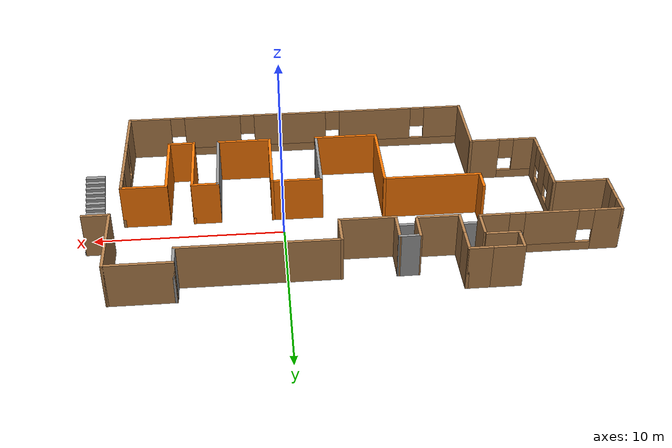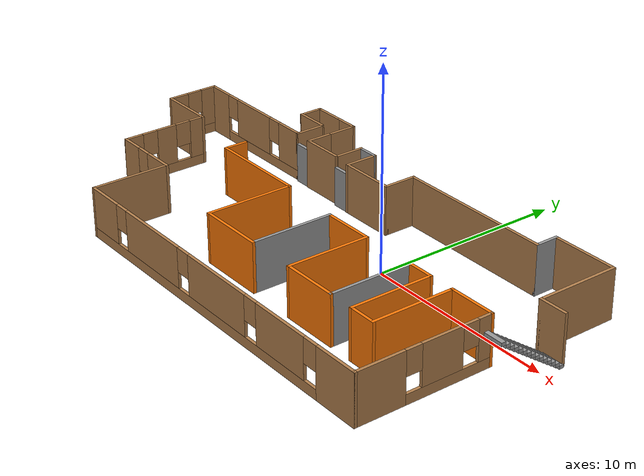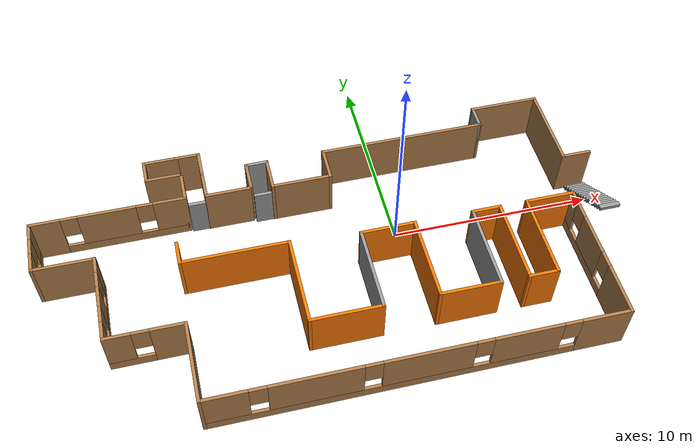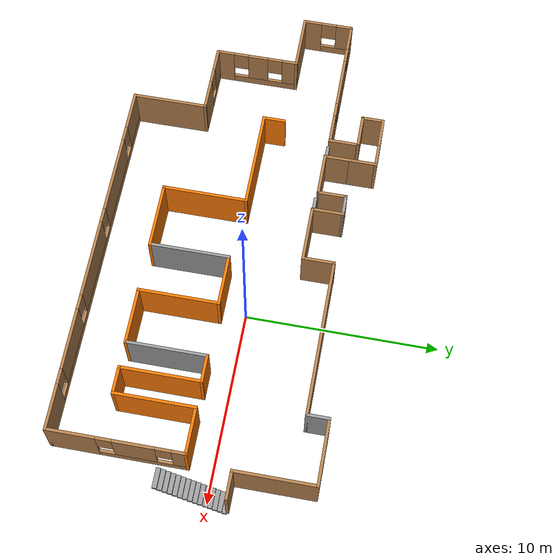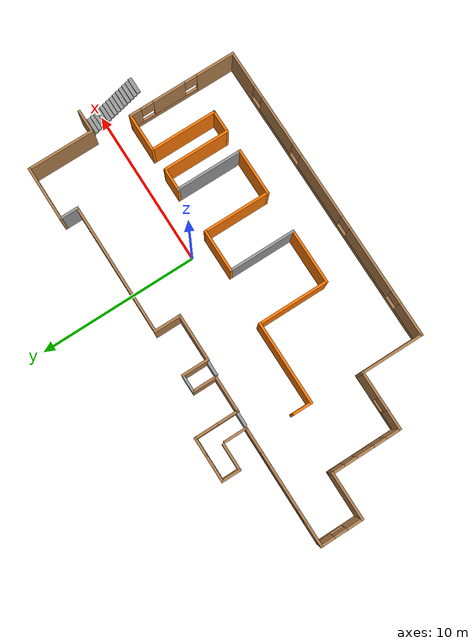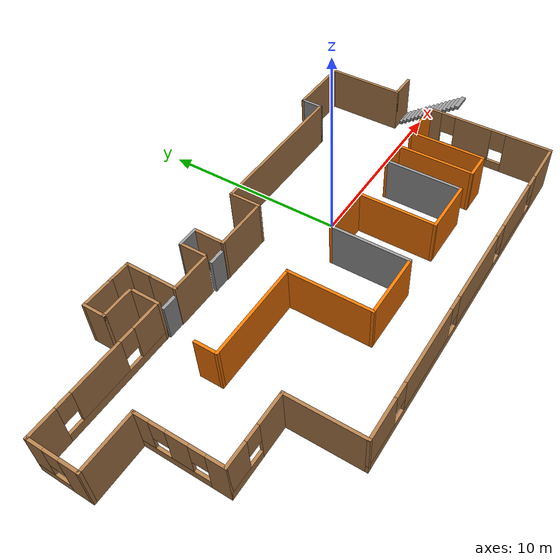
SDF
<sdf version="1.6">
 <model name="boomLab">
  <pose>-3.45682 -1.38478 0 0 -0 0</pose>
  <link name="Door_1">
   <collision name="Door_1_Collision">
    <geometry><box><size>0.9 0.17 2</size></box></geometry>
    <pose>0 0 1 0 -0 0</pose>
   </collision>
   <visual name="Door_1_Visual">
    <pose>0 0 1 0 -0 0</pose>
    <geometry><box><size>0.9 0.17 2</size></box></geometry>
    <material>
     <script><uri>file://media/materials/scripts/gazebo.material</uri><name>Gazebo/Grey</name></script>
    </material>
   </visual>
   <pose>-5.77779 4.03566 0 0 -0 0</pose>
  </link>
  <link name="Door_2">
   <collision name="Door_2_Collision">
    <geometry><box><size>0.9 0.17 2</size></box></geometry>
    <pose>0 0 1 0 -0 0</pose>
   </collision>
   <visual name="Door_2_Visual">
    <pose>0 0 1 0 -0 0</pose>
    <geometry><box><size>0.9 0.17 2</size></box></geometry>
    <material>
     <script><uri>file://media/materials/scripts/gazebo.material</uri><name>Gazebo/Grey</name></script>
    </material>
   </visual>
   <pose>-2.59373 3.89414 0 0 -0 0</pose>
  </link>
  <link name="Stairs_0">
   <visual name="Stairs_0_Visual_0">
    <pose>13.2551 2.30884 0.083333 0 -0 0</pose>
    <geometry><box><size>1 0.233333 0.166667</size></box></geometry>
    <material>
     <script><uri>file://media/materials/scripts/gazebo.material</uri><name>Gazebo/Grey</name></script>
     <ambient>1 1 1 1</ambient>
    </material>
    <meta><layer>0</layer></meta>
   </visual>
   <collision name="Stairs_0_Collision_0">
    <geometry><box><size>1 0.233333 0.166667</size></box></geometry>
    <pose>13.2551 2.30884 0.083333 0 -0 0</pose>
   </collision>
   <visual name="Stairs_0_Visual_1">
    <pose>13.2551 2.0755 0.25 0 -0 0</pose>
    <geometry><box><size>1 0.233333 0.166667</size></box></geometry>
    <material>
     <script><uri>file://media/materials/scripts/gazebo.material</uri><name>Gazebo/Grey</name></script>
     <ambient>1 1 1 1</ambient>
    </material>
    <meta><layer>0</layer></meta>
   </visual>
   <collision name="Stairs_0_Collision_1">
    <geometry><box><size>1 0.233333 0.166667</size></box></geometry>
    <pose>13.2551 2.0755 0.25 0 -0 0</pose>
   </collision>
   <visual name="Stairs_0_Visual_2">
    <pose>13.2551 1.84217 0.416667 0 -0 0</pose>
    <geometry><box><size>1 0.233333 0.166667</size></box></geometry>
    <material>
     <script><uri>file://media/materials/scripts/gazebo.material</uri><name>Gazebo/Grey</name></script>
     <ambient>1 1 1 1</ambient>
    </material>
    <meta><layer>0</layer></meta>
   </visual>
   <collision name="Stairs_0_Collision_2">
    <geometry><box><size>1 0.233333 0.166667</size></box></geometry>
    <pose>13.2551 1.84217 0.416667 0 -0 0</pose>
   </collision>
   <visual name="Stairs_0_Visual_3">
    <pose>13.2551 1.60884 0.583333 0 -0 0</pose>
    <geometry><box><size>1 0.233333 0.166667</size></box></geometry>
    <material>
     <script><uri>file://media/materials/scripts/gazebo.material</uri><name>Gazebo/Grey</name></script>
     <ambient>1 1 1 1</ambient>
    </material>
    <meta><layer>0</layer></meta>
   </visual>
   <collision name="Stairs_0_Collision_3">
    <geometry><box><size>1 0.233333 0.166667</size></box></geometry>
    <pose>13.2551 1.60884 0.583333 0 -0 0</pose>
   </collision>
   <visual name="Stairs_0_Visual_4">
    <pose>13.2551 1.3755 0.75 0 -0 0</pose>
    <geometry><box><size>1 0.233333 0.166667</size></box></geometry>
    <material>
     <script><uri>file://media/materials/scripts/gazebo.material</uri><name>Gazebo/Grey</name></script>
     <ambient>1 1 1 1</ambient>
    </material>
    <meta><layer>0</layer></meta>
   </visual>
   <collision name="Stairs_0_Collision_4">
    <geometry><box><size>1 0.233333 0.166667</size></box></geometry>
    <pose>13.2551 1.3755 0.75 0 -0 0</pose>
   </collision>
   <visual name="Stairs_0_Visual_5">
    <pose>13.2551 1.14217 0.916667 0 -0 0</pose>
    <geometry><box><size>1 0.233333 0.166667</size></box></geometry>
    <material>
     <script><uri>file://media/materials/scripts/gazebo.material</uri><name>Gazebo/Grey</name></script>
     <ambient>1 1 1 1</ambient>
    </material>
    <meta><layer>0</layer></meta>
   </visual>
   <collision name="Stairs_0_Collision_5">
    <geometry><box><size>1 0.233333 0.166667</size></box></geometry>
    <pose>13.2551 1.14217 0.916667 0 -0 0</pose>
   </collision>
   <visual name="Stairs_0_Visual_6">
    <pose>13.2551 0.908835 1.08333 0 -0 0</pose>
    <geometry><box><size>1 0.233333 0.166667</size></box></geometry>
    <material>
     <script><uri>file://media/materials/scripts/gazebo.material</uri><name>Gazebo/Grey</name></script>
     <ambient>1 1 1 1</ambient>
    </material>
    <meta><layer>0</layer></meta>
   </visual>
   <collision name="Stairs_0_Collision_6">
    <geometry><box><size>1 0.233333 0.166667</size></box></geometry>
    <pose>13.2551 0.908835 1.08333 0 -0 0</pose>
   </collision>
   <visual name="Stairs_0_Visual_7">
    <pose>13.2551 0.675501 1.25 0 -0 0</pose>
    <geometry><box><size>1 0.233333 0.166667</size></box></geometry>
    <material>
     <script><uri>file://media/materials/scripts/gazebo.material</uri><name>Gazebo/Grey</name></script>
     <ambient>1 1 1 1</ambient>
    </material>
    <meta><layer>0</layer></meta>
   </visual>
   <collision name="Stairs_0_Collision_7">
    <geometry><box><size>1 0.233333 0.166667</size></box></geometry>
    <pose>13.2551 0.675501 1.25 0 -0 0</pose>
   </collision>
   <visual name="Stairs_0_Visual_8">
    <pose>13.2551 0.442168 1.41667 0 -0 0</pose>
    <geometry><box><size>1 0.233333 0.166667</size></box></geometry>
    <material>
     <script><uri>file://media/materials/scripts/gazebo.material</uri><name>Gazebo/Grey</name></script>
     <ambient>1 1 1 1</ambient>
    </material>
    <meta><layer>0</layer></meta>
   </visual>
   <collision name="Stairs_0_Collision_8">
    <geometry><box><size>1 0.233333 0.166667</size></box></geometry>
    <pose>13.2551 0.442168 1.41667 0 -0 0</pose>
   </collision>
   <visual name="Stairs_0_Visual_9">
    <pose>13.2551 0.208835 1.58333 0 -0 0</pose>
    <geometry><box><size>1 0.233333 0.166667</size></box></geometry>
    <material>
     <script><uri>file://media/materials/scripts/gazebo.material</uri><name>Gazebo/Grey</name></script>
     <ambient>1 1 1 1</ambient>
    </material>
    <meta><layer>0</layer></meta>
   </visual>
   <collision name="Stairs_0_Collision_9">
    <geometry><box><size>1 0.233333 0.166667</size></box></geometry>
    <pose>13.2551 0.208835 1.58333 0 -0 0</pose>
   </collision>
   <visual name="Stairs_0_Visual_10">
    <pose>13.2551 -0.024498 1.75 0 -0 0</pose>
    <geometry><box><size>1 0.233333 0.166667</size></box></geometry>
    <material>
     <script><uri>file://media/materials/scripts/gazebo.material</uri><name>Gazebo/Grey</name></script>
     <ambient>1 1 1 1</ambient>
    </material>
    <meta><layer>0</layer></meta>
   </visual>
   <collision name="Stairs_0_Collision_10">
    <geometry><box><size>1 0.233333 0.166667</size></box></geometry>
    <pose>13.2551 -0.024498 1.75 0 -0 0</pose>
   </collision>
   <visual name="Stairs_0_Visual_11">
    <pose>13.2551 -0.257832 1.91667 0 -0 0</pose>
    <geometry><box><size>1 0.233333 0.166667</size></box></geometry>
    <material>
     <script><uri>file://media/materials/scripts/gazebo.material</uri><name>Gazebo/Grey</name></script>
     <ambient>1 1 1 1</ambient>
    </material>
    <meta><layer>0</layer></meta>
   </visual>
   <collision name="Stairs_0_Collision_11">
    <geometry><box><size>1 0.233333 0.166667</size></box></geometry>
    <pose>13.2551 -0.257832 1.91667 0 -0 0</pose>
   </collision>
   <visual name="Stairs_0_Visual_12">
    <pose>13.2551 -0.491165 2.08333 0 -0 0</pose>
    <geometry><box><size>1 0.233333 0.166667</size></box></geometry>
    <material>
     <script><uri>file://media/materials/scripts/gazebo.material</uri><name>Gazebo/Grey</name></script>
     <ambient>1 1 1 1</ambient>
    </material>
    <meta><layer>0</layer></meta>
   </visual>
   <collision name="Stairs_0_Collision_12">
    <geometry><box><size>1 0.233333 0.166667</size></box></geometry>
    <pose>13.2551 -0.491165 2.08333 0 -0 0</pose>
   </collision>
   <visual name="Stairs_0_Visual_13">
    <pose>13.2551 -0.724499 2.25 0 -0 0</pose>
    <geometry><box><size>1 0.233333 0.166667</size></box></geometry>
    <material>
     <script><uri>file://media/materials/scripts/gazebo.material</uri><name>Gazebo/Grey</name></script>
     <ambient>1 1 1 1</ambient>
    </material>
    <meta><layer>0</layer></meta>
   </visual>
   <collision name="Stairs_0_Collision_13">
    <geometry><box><size>1 0.233333 0.166667</size></box></geometry>
    <pose>13.2551 -0.724499 2.25 0 -0 0</pose>
   </collision>
   <visual name="Stairs_0_Visual_14">
    <pose>13.2551 -0.957832 2.41667 0 -0 0</pose>
    <geometry><box><size>1 0.233333 0.166667</size></box></geometry>
    <material>
     <script><uri>file://media/materials/scripts/gazebo.material</uri><name>Gazebo/Grey</name></script>
     <ambient>1 1 1 1</ambient>
    </material>
    <meta><layer>0</layer></meta>
   </visual>
   <collision name="Stairs_0_Collision_14">
    <geometry><box><size>1 0.233333 0.166667</size></box></geometry>
    <pose>13.2551 -0.957832 2.41667 0 -0 0</pose>
   </collision>
  </link>
  <link name="Wall_35">
   <pose>11.8699 -3.27528 0 0 -0 1.5708</pose>
   <visual name="Wall_35_Visual_0">
    <pose>-2.23883 0 1.25 0 -0 0</pose>
    <geometry><box><size>2.52233 0.15 2.5</size></box></geometry>
    <material>
     <script><uri>file://media/materials/scripts/gazebo.material</uri><name>Gazebo/Wood</name></script>
     <ambient>0.435294 0.796078 0.67451 1</ambient>
    </material>
    <meta><layer>0</layer></meta>
   </visual>
   <collision name="Wall_35_Collision_0">
    <geometry><box><size>2.52233 0.15 2.5</size></box></geometry>
    <pose>-2.23883 0 1.25 0 -0 0</pose>
   </collision>
   <visual name="Wall_35_Visual_1">
    <pose>1.26117 0 0.25 0 -0 0</pose>
    <geometry><box><size>4.47767 0.15 0.5</size></box></geometry>
    <material>
     <script><uri>file://media/materials/scripts/gazebo.material</uri><name>Gazebo/Wood</name></script>
     <ambient>0.435294 0.796078 0.67451 1</ambient>
    </material>
    <meta><layer>0</layer></meta>
   </visual>
   <collision name="Wall_35_Collision_1">
    <geometry><box><size>4.47767 0.15 0.5</size></box></geometry>
    <pose>1.26117 0 0.25 0 -0 0</pose>
   </collision>
   <visual name="Wall_35_Visual_2">
    <pose>0.872849 0 1.5 0 -0 0</pose>
    <geometry><box><size>2.10104 0.15 2</size></box></geometry>
    <material>
     <script><uri>file://media/materials/scripts/gazebo.material</uri><name>Gazebo/Wood</name></script>
     <ambient>0.435294 0.796078 0.67451 1</ambient>
    </material>
    <meta><layer>0</layer></meta>
   </visual>
   <collision name="Wall_35_Collision_2">
    <geometry><box><size>2.10104 0.15 2</size></box></geometry>
    <pose>0.872849 0 1.5 0 -0 0</pose>
   </collision>
   <visual name="Wall_35_Visual_3">
    <pose>3.11168 0 1.5 0 -0 0</pose>
    <geometry><box><size>0.776631 0.15 2</size></box></geometry>
    <material>
     <script><uri>file://media/materials/scripts/gazebo.material</uri><name>Gazebo/Wood</name></script>
     <ambient>0.435294 0.796078 0.67451 1</ambient>
    </material>
    <meta><layer>0</layer></meta>
   </visual>
   <collision name="Wall_35_Collision_3">
    <geometry><box><size>0.776631 0.15 2</size></box></geometry>
    <pose>3.11168 0 1.5 0 -0 0</pose>
   </collision>
   <visual name="Wall_35_Visual_4">
    <pose>-0.577671 0 1.9 0 -0 0</pose>
    <geometry><box><size>0.8 0.15 1.2</size></box></geometry>
    <material>
     <script><uri>file://media/materials/scripts/gazebo.material</uri><name>Gazebo/Wood</name></script>
     <ambient>0.435294 0.796078 0.67451 1</ambient>
    </material>
    <meta><layer>0</layer></meta>
   </visual>
   <collision name="Wall_35_Collision_4">
    <geometry><box><size>0.8 0.15 1.2</size></box></geometry>
    <pose>-0.577671 0 1.9 0 -0 0</pose>
   </collision>
   <visual name="Wall_35_Visual_5">
    <pose>2.32337 0 1.9 0 -0 0</pose>
    <geometry><box><size>0.8 0.15 1.2</size></box></geometry>
    <material>
     <script><uri>file://media/materials/scripts/gazebo.material</uri><name>Gazebo/Wood</name></script>
     <ambient>0.435294 0.796078 0.67451 1</ambient>
    </material>
    <meta><layer>0</layer></meta>
   </visual>
   <collision name="Wall_35_Collision_5">
    <geometry><box><size>0.8 0.15 1.2</size></box></geometry>
    <pose>2.32337 0 1.9 0 -0 0</pose>
   </collision>
  </link>
  <link name="Wall_36">
   <collision name="Wall_36_Collision">
    <geometry><box><size>2.5 0.15 2.5</size></box></geometry>
    <pose>0 0 1.25 0 -0 0</pose>
   </collision>
   <visual name="Wall_36_Visual">
    <pose>0 0 1.25 0 -0 0</pose>
    <geometry><box><size>2.5 0.15 2.5</size></box></geometry>
    <material>
     <script><uri>file://media/materials/scripts/gazebo.material</uri><name>Gazebo/Grey</name></script>
     <ambient>0.996078 0.47451 0.0196078 1</ambient>
    </material>
    <meta><layer>0</layer></meta>
   </visual>
   <pose>10.6949 0.149722 0 0 -0 3.14159</pose>
  </link>
  <link name="Wall_37">
   <collision name="Wall_37_Collision">
    <geometry><box><size>4.25 0.15 2.5</size></box></geometry>
    <pose>0 0 1.25 0 -0 0</pose>
   </collision>
   <visual name="Wall_37_Visual">
    <pose>0 0 1.25 0 -0 0</pose>
    <geometry><box><size>4.25 0.15 2.5</size></box></geometry>
    <material>
     <script><uri>file://media/materials/scripts/gazebo.material</uri><name>Gazebo/Grey</name></script>
     <ambient>0.996078 0.47451 0.0196078 1</ambient>
    </material>
    <meta><layer>0</layer></meta>
   </visual>
   <pose>9.51991 -1.90028 0 0 0 -1.5708</pose>
  </link>
  <link name="Wall_38">
   <collision name="Wall_38_Collision">
    <geometry><box><size>1.5 0.15 2.5</size></box></geometry>
    <pose>0 0 1.25 0 -0 0</pose>
   </collision>
   <visual name="Wall_38_Visual">
    <pose>0 0 1.25 0 -0 0</pose>
    <geometry><box><size>1.5 0.15 2.5</size></box></geometry>
    <material>
     <script><uri>file://media/materials/scripts/gazebo.material</uri><name>Gazebo/Grey</name></script>
     <ambient>0.996078 0.47451 0.0196078 1</ambient>
    </material>
    <meta><layer>0</layer></meta>
   </visual>
   <pose>8.84491 -3.95028 0 0 -0 3.14159</pose>
  </link>
  <link name="Wall_39">
   <collision name="Wall_39_Collision">
    <geometry><box><size>4.25 0.15 2.5</size></box></geometry>
    <pose>0 0 1.25 0 -0 0</pose>
   </collision>
   <visual name="Wall_39_Visual">
    <pose>0 0 1.25 0 -0 0</pose>
    <geometry><box><size>4.25 0.15 2.5</size></box></geometry>
    <material>
     <script><uri>file://media/materials/scripts/gazebo.material</uri><name>Gazebo/Grey</name></script>
     <ambient>0.996078 0.47451 0.0196078 1</ambient>
    </material>
    <meta><layer>0</layer></meta>
   </visual>
   <pose>8.16991 -1.90028 0 0 -0 1.5708</pose>
  </link>
  <link name="Wall_40">
   <collision name="Wall_40_Collision">
    <geometry><box><size>1.5 0.15 2.5</size></box></geometry>
    <pose>0 0 1.25 0 -0 0</pose>
   </collision>
   <visual name="Wall_40_Visual">
    <pose>0 0 1.25 0 -0 0</pose>
    <geometry><box><size>1.5 0.15 2.5</size></box></geometry>
    <material>
     <script><uri>file://media/materials/scripts/gazebo.material</uri><name>Gazebo/Grey</name></script>
     <ambient>0.996078 0.47451 0.0196078 1</ambient>
    </material>
    <meta><layer>0</layer></meta>
   </visual>
   <pose>7.49491 0.149722 0 0 -0 3.14159</pose>
  </link>
  <link name="Wall_41">
   <collision name="Wall_41_Collision">
    <geometry><box><size>4.25 0.15 2.5</size></box></geometry>
    <pose>0 0 1.25 0 -0 0</pose>
   </collision>
   <visual name="Wall_41_Visual">
    <pose>0 0 1.25 0 -0 0</pose>
    <geometry><box><size>4.25 0.15 2.5</size></box></geometry>
    <material>
     <script><uri>file://media/materials/scripts/gazebo.material</uri><name>Gazebo/Grey</name></script>
     <ambient>1 1 1 1</ambient>
    </material>
    <meta><layer>0</layer></meta>
   </visual>
   <pose>6.81991 -1.90028 0 0 0 -1.5708</pose>
  </link>
  <link name="Wall_42">
   <collision name="Wall_42_Collision">
    <geometry><box><size>3 0.15 2.5</size></box></geometry>
    <pose>0 0 1.25 0 -0 0</pose>
   </collision>
   <visual name="Wall_42_Visual">
    <pose>0 0 1.25 0 -0 0</pose>
    <geometry><box><size>3 0.15 2.5</size></box></geometry>
    <material>
     <script><uri>file://media/materials/scripts/gazebo.material</uri><name>Gazebo/Grey</name></script>
     <ambient>0.996078 0.47451 0.0196078 1</ambient>
    </material>
    <meta><layer>0</layer></meta>
   </visual>
   <pose>5.39491 -3.95028 0 0 -0 3.14159</pose>
  </link>
  <link name="Wall_43">
   <collision name="Wall_43_Collision">
    <geometry><box><size>4.25 0.15 2.5</size></box></geometry>
    <pose>0 0 1.25 0 -0 0</pose>
   </collision>
   <visual name="Wall_43_Visual">
    <pose>0 0 1.25 0 -0 0</pose>
    <geometry><box><size>4.25 0.15 2.5</size></box></geometry>
    <material>
     <script><uri>file://media/materials/scripts/gazebo.material</uri><name>Gazebo/Grey</name></script>
     <ambient>0.996078 0.47451 0.0196078 1</ambient>
    </material>
    <meta><layer>0</layer></meta>
   </visual>
   <pose>3.96991 -1.90028 0 0 -0 1.5708</pose>
  </link>
  <link name="Wall_44">
   <collision name="Wall_44_Collision">
    <geometry><box><size>2.75 0.15 2.5</size></box></geometry>
    <pose>0 0 1.25 0 -0 0</pose>
   </collision>
   <visual name="Wall_44_Visual">
    <pose>0 0 1.25 0 -0 0</pose>
    <geometry><box><size>2.75 0.15 2.5</size></box></geometry>
    <material>
     <script><uri>file://media/materials/scripts/gazebo.material</uri><name>Gazebo/Grey</name></script>
     <ambient>0.996078 0.47451 0.0196078 1</ambient>
    </material>
    <meta><layer>0</layer></meta>
   </visual>
   <pose>2.66991 0.149722 0 0 -0 3.14159</pose>
  </link>
  <link name="Wall_45">
   <collision name="Wall_45_Collision">
    <geometry><box><size>4.25 0.15 2.5</size></box></geometry>
    <pose>0 0 1.25 0 -0 0</pose>
   </collision>
   <visual name="Wall_45_Visual">
    <pose>0 0 1.25 0 -0 0</pose>
    <geometry><box><size>4.25 0.15 2.5</size></box></geometry>
    <material>
     <script><uri>file://media/materials/scripts/gazebo.material</uri><name>Gazebo/Grey</name></script>
     <ambient>1 1 1 1</ambient>
    </material>
    <meta><layer>0</layer></meta>
   </visual>
   <pose>1.36991 -1.90028 0 0 0 -1.5708</pose>
  </link>
  <link name="Wall_46">
   <collision name="Wall_46_Collision">
    <geometry><box><size>3.5 0.15 2.5</size></box></geometry>
    <pose>0 0 1.25 0 -0 0</pose>
   </collision>
   <visual name="Wall_46_Visual">
    <pose>0 0 1.25 0 -0 0</pose>
    <geometry><box><size>3.5 0.15 2.5</size></box></geometry>
    <material>
     <script><uri>file://media/materials/scripts/gazebo.material</uri><name>Gazebo/Grey</name></script>
     <ambient>0.996078 0.47451 0.0196078 1</ambient>
    </material>
    <meta><layer>0</layer></meta>
   </visual>
   <pose>-0.305093 -3.95028 0 0 -0 3.14159</pose>
  </link>
  <link name="Wall_47">
   <collision name="Wall_47_Collision">
    <geometry><box><size>4.5 0.15 2.5</size></box></geometry>
    <pose>0 0 1.25 0 -0 0</pose>
   </collision>
   <visual name="Wall_47_Visual">
    <pose>0 0 1.25 0 -0 0</pose>
    <geometry><box><size>4.5 0.15 2.5</size></box></geometry>
    <material>
     <script><uri>file://media/materials/scripts/gazebo.material</uri><name>Gazebo/Grey</name></script>
     <ambient>0.996078 0.47451 0.0196078 1</ambient>
    </material>
    <meta><layer>0</layer></meta>
   </visual>
   <pose>-1.98009 -1.77528 0 0 -0 1.5708</pose>
  </link>
  <link name="Wall_48">
   <collision name="Wall_48_Collision">
    <geometry><box><size>5.25 0.15 2.5</size></box></geometry>
    <pose>0 0 1.25 0 -0 0</pose>
   </collision>
   <visual name="Wall_48_Visual">
    <pose>0 0 1.25 0 -0 0</pose>
    <geometry><box><size>5.25 0.15 2.5</size></box></geometry>
    <material>
     <script><uri>file://media/materials/scripts/gazebo.material</uri><name>Gazebo/Grey</name></script>
     <ambient>0.996078 0.47451 0.0196078 1</ambient>
    </material>
    <meta><layer>0</layer></meta>
   </visual>
   <pose>-4.53009 0.399722 0 0 -0 3.14159</pose>
  </link>
  <link name="Wall_49">
   <collision name="Wall_49_Collision">
    <geometry><box><size>1.25 0.15 2.5</size></box></geometry>
    <pose>0 0 1.25 0 -0 0</pose>
   </collision>
   <visual name="Wall_49_Visual">
    <pose>0 0 1.25 0 -0 0</pose>
    <geometry><box><size>1.25 0.15 2.5</size></box></geometry>
    <material>
     <script><uri>file://media/materials/scripts/gazebo.material</uri><name>Gazebo/Grey</name></script>
     <ambient>0.996078 0.47451 0.0196078 1</ambient>
    </material>
    <meta><layer>0</layer></meta>
   </visual>
   <pose>-7.08009 0.949722 0 0 -0 1.5708</pose>
  </link>
  <link name="Wall_53">
   <pose>2.31991 -6.70028 0 0 -0 3.14159</pose>
   <visual name="Wall_53_Visual_0">
    <pose>-8.43625 0 1.25 0 -0 0</pose>
    <geometry><box><size>2.3775 0.15 2.5</size></box></geometry>
    <material>
     <script><uri>file://media/materials/scripts/gazebo.material</uri><name>Gazebo/Wood</name></script>
     <ambient>0.435294 0.796078 0.67451 1</ambient>
    </material>
    <meta><layer>0</layer></meta>
   </visual>
   <collision name="Wall_53_Collision_0">
    <geometry><box><size>2.3775 0.15 2.5</size></box></geometry>
    <pose>-8.43625 0 1.25 0 -0 0</pose>
   </collision>
   <visual name="Wall_53_Visual_1">
    <pose>1.18875 0 0.25 0 -0 0</pose>
    <geometry><box><size>16.8725 0.15 0.5</size></box></geometry>
    <material>
     <script><uri>file://media/materials/scripts/gazebo.material</uri><name>Gazebo/Wood</name></script>
     <ambient>0.435294 0.796078 0.67451 1</ambient>
    </material>
    <meta><layer>0</layer></meta>
   </visual>
   <collision name="Wall_53_Collision_1">
    <geometry><box><size>16.8725 0.15 0.5</size></box></geometry>
    <pose>1.18875 0 0.25 0 -0 0</pose>
   </collision>
   <visual name="Wall_53_Visual_2">
    <pose>-4.84861 0 1.5 0 -0 0</pose>
    <geometry><box><size>3.19777 0.15 2</size></box></geometry>
    <material>
     <script><uri>file://media/materials/scripts/gazebo.material</uri><name>Gazebo/Wood</name></script>
     <ambient>0.435294 0.796078 0.67451 1</ambient>
    </material>
    <meta><layer>0</layer></meta>
   </visual>
   <collision name="Wall_53_Collision_2">
    <geometry><box><size>3.19777 0.15 2</size></box></geometry>
    <pose>-4.84861 0 1.5 0 -0 0</pose>
   </collision>
   <visual name="Wall_53_Visual_3">
    <pose>-0.373228 0 1.5 0 -0 0</pose>
    <geometry><box><size>4.15299 0.15 2</size></box></geometry>
    <material>
     <script><uri>file://media/materials/scripts/gazebo.material</uri><name>Gazebo/Wood</name></script>
     <ambient>0.435294 0.796078 0.67451 1</ambient>
    </material>
    <meta><layer>0</layer></meta>
   </visual>
   <collision name="Wall_53_Collision_3">
    <geometry><box><size>4.15299 0.15 2</size></box></geometry>
    <pose>-0.373228 0 1.5 0 -0 0</pose>
   </collision>
   <visual name="Wall_53_Visual_4">
    <pose>4.59746 0 1.5 0 -0 0</pose>
    <geometry><box><size>4.18837 0.15 2</size></box></geometry>
    <material>
     <script><uri>file://media/materials/scripts/gazebo.material</uri><name>Gazebo/Wood</name></script>
     <ambient>0.435294 0.796078 0.67451 1</ambient>
    </material>
    <meta><layer>0</layer></meta>
   </visual>
   <collision name="Wall_53_Collision_4">
    <geometry><box><size>4.18837 0.15 2</size></box></geometry>
    <pose>4.59746 0 1.5 0 -0 0</pose>
   </collision>
   <visual name="Wall_53_Visual_5">
    <pose>8.55832 0 1.5 0 -0 0</pose>
    <geometry><box><size>2.13336 0.15 2</size></box></geometry>
    <material>
     <script><uri>file://media/materials/scripts/gazebo.material</uri><name>Gazebo/Wood</name></script>
     <ambient>0.435294 0.796078 0.67451 1</ambient>
    </material>
    <meta><layer>0</layer></meta>
   </visual>
   <collision name="Wall_53_Collision_5">
    <geometry><box><size>2.13336 0.15 2</size></box></geometry>
    <pose>8.55832 0 1.5 0 -0 0</pose>
   </collision>
   <visual name="Wall_53_Visual_6">
    <pose>-6.8475 0 1.9 0 -0 0</pose>
    <geometry><box><size>0.8 0.15 1.2</size></box></geometry>
    <material>
     <script><uri>file://media/materials/scripts/gazebo.material</uri><name>Gazebo/Wood</name></script>
     <ambient>0.435294 0.796078 0.67451 1</ambient>
    </material>
    <meta><layer>0</layer></meta>
   </visual>
   <collision name="Wall_53_Collision_6">
    <geometry><box><size>0.8 0.15 1.2</size></box></geometry>
    <pose>-6.8475 0 1.9 0 -0 0</pose>
   </collision>
   <visual name="Wall_53_Visual_7">
    <pose>-2.84972 0 1.9 0 -0 0</pose>
    <geometry><box><size>0.8 0.15 1.2</size></box></geometry>
    <material>
     <script><uri>file://media/materials/scripts/gazebo.material</uri><name>Gazebo/Wood</name></script>
     <ambient>0.435294 0.796078 0.67451 1</ambient>
    </material>
    <meta><layer>0</layer></meta>
   </visual>
   <collision name="Wall_53_Collision_7">
    <geometry><box><size>0.8 0.15 1.2</size></box></geometry>
    <pose>-2.84972 0 1.9 0 -0 0</pose>
   </collision>
   <visual name="Wall_53_Visual_8">
    <pose>2.10327 0 1.9 0 -0 0</pose>
    <geometry><box><size>0.8 0.15 1.2</size></box></geometry>
    <material>
     <script><uri>file://media/materials/scripts/gazebo.material</uri><name>Gazebo/Wood</name></script>
     <ambient>0.435294 0.796078 0.67451 1</ambient>
    </material>
    <meta><layer>0</layer></meta>
   </visual>
   <collision name="Wall_53_Collision_8">
    <geometry><box><size>0.8 0.15 1.2</size></box></geometry>
    <pose>2.10327 0 1.9 0 -0 0</pose>
   </collision>
   <visual name="Wall_53_Visual_9">
    <pose>7.09164 0 1.9 0 -0 0</pose>
    <geometry><box><size>0.8 0.15 1.2</size></box></geometry>
    <material>
     <script><uri>file://media/materials/scripts/gazebo.material</uri><name>Gazebo/Wood</name></script>
     <ambient>0.435294 0.796078 0.67451 1</ambient>
    </material>
    <meta><layer>0</layer></meta>
   </visual>
   <collision name="Wall_53_Collision_9">
    <geometry><box><size>0.8 0.15 1.2</size></box></geometry>
    <pose>7.09164 0 1.9 0 -0 0</pose>
   </collision>
  </link>
  <link name="Wall_54">
   <collision name="Wall_54_Collision">
    <geometry><box><size>4 0.15 2.5</size></box></geometry>
    <pose>0 0 1.25 0 -0 0</pose>
   </collision>
   <visual name="Wall_54_Visual">
    <pose>0 0 1.25 0 -0 0</pose>
    <geometry><box><size>4 0.15 2.5</size></box></geometry>
    <material>
     <script><uri>file://media/materials/scripts/gazebo.material</uri><name>Gazebo/Wood</name></script>
     <ambient>0.435294 0.796078 0.67451 1</ambient>
    </material>
    <meta><layer>0</layer></meta>
   </visual>
   <pose>-7.23009 -4.77528 0 0 -0 1.5708</pose>
  </link>
  <link name="Wall_55">
   <pose>-9.03009 -2.85028 0 0 -0 3.14159</pose>
   <visual name="Wall_55_Visual_0">
    <pose>-1.03783 0 1.25 0 -0 0</pose>
    <geometry><box><size>1.67434 0.15 2.5</size></box></geometry>
    <material>
     <script><uri>file://media/materials/scripts/gazebo.material</uri><name>Gazebo/Wood</name></script>
     <ambient>0.435294 0.796078 0.67451 1</ambient>
    </material>
    <meta><layer>0</layer></meta>
   </visual>
   <collision name="Wall_55_Collision_0">
    <geometry><box><size>1.67434 0.15 2.5</size></box></geometry>
    <pose>-1.03783 0 1.25 0 -0 0</pose>
   </collision>
   <visual name="Wall_55_Visual_1">
    <pose>0.837168 0 0.25 0 -0 0</pose>
    <geometry><box><size>2.07566 0.15 0.5</size></box></geometry>
    <material>
     <script><uri>file://media/materials/scripts/gazebo.material</uri><name>Gazebo/Wood</name></script>
     <ambient>0.435294 0.796078 0.67451 1</ambient>
    </material>
    <meta><layer>0</layer></meta>
   </visual>
   <collision name="Wall_55_Collision_1">
    <geometry><box><size>2.07566 0.15 0.5</size></box></geometry>
    <pose>0.837168 0 0.25 0 -0 0</pose>
   </collision>
   <visual name="Wall_55_Visual_2">
    <pose>1.23717 0 1.5 0 -0 0</pose>
    <geometry><box><size>1.27566 0.15 2</size></box></geometry>
    <material>
     <script><uri>file://media/materials/scripts/gazebo.material</uri><name>Gazebo/Wood</name></script>
     <ambient>0.435294 0.796078 0.67451 1</ambient>
    </material>
    <meta><layer>0</layer></meta>
   </visual>
   <collision name="Wall_55_Collision_2">
    <geometry><box><size>1.27566 0.15 2</size></box></geometry>
    <pose>1.23717 0 1.5 0 -0 0</pose>
   </collision>
   <visual name="Wall_55_Visual_3">
    <pose>0.199336 0 1.9 0 -0 0</pose>
    <geometry><box><size>0.8 0.15 1.2</size></box></geometry>
    <material>
     <script><uri>file://media/materials/scripts/gazebo.material</uri><name>Gazebo/Wood</name></script>
     <ambient>0.435294 0.796078 0.67451 1</ambient>
    </material>
    <meta><layer>0</layer></meta>
   </visual>
   <collision name="Wall_55_Collision_3">
    <geometry><box><size>0.8 0.15 1.2</size></box></geometry>
    <pose>0.199336 0 1.9 0 -0 0</pose>
   </collision>
  </link>
  <link name="Wall_56">
   <pose>-10.8301 -0.675278 0 0 -0 1.5708</pose>
   <visual name="Wall_56_Visual_0">
    <pose>-1.76403 0 1.25 0 -0 0</pose>
    <geometry><box><size>0.971934 0.15 2.5</size></box></geometry>
    <material>
     <script><uri>file://media/materials/scripts/gazebo.material</uri><name>Gazebo/Wood</name></script>
     <ambient>0.435294 0.796078 0.67451 1</ambient>
    </material>
    <meta><layer>0</layer></meta>
   </visual>
   <collision name="Wall_56_Collision_0">
    <geometry><box><size>0.971934 0.15 2.5</size></box></geometry>
    <pose>-1.76403 0 1.25 0 -0 0</pose>
   </collision>
   <visual name="Wall_56_Visual_1">
    <pose>0.485967 0 0.25 0 -0 0</pose>
    <geometry><box><size>3.52807 0.15 0.5</size></box></geometry>
    <material>
     <script><uri>file://media/materials/scripts/gazebo.material</uri><name>Gazebo/Wood</name></script>
     <ambient>0.435294 0.796078 0.67451 1</ambient>
    </material>
    <meta><layer>0</layer></meta>
   </visual>
   <collision name="Wall_56_Collision_1">
    <geometry><box><size>3.52807 0.15 0.5</size></box></geometry>
    <pose>0.485967 0 0.25 0 -0 0</pose>
   </collision>
   <visual name="Wall_56_Visual_2">
    <pose>0.059465 0 1.5 0 -0 0</pose>
    <geometry><box><size>1.07506 0.15 2</size></box></geometry>
    <material>
     <script><uri>file://media/materials/scripts/gazebo.material</uri><name>Gazebo/Wood</name></script>
     <ambient>0.435294 0.796078 0.67451 1</ambient>
    </material>
    <meta><layer>0</layer></meta>
   </visual>
   <collision name="Wall_56_Collision_2">
    <geometry><box><size>1.07506 0.15 2</size></box></geometry>
    <pose>0.059465 0 1.5 0 -0 0</pose>
   </collision>
   <visual name="Wall_56_Visual_3">
    <pose>1.8235 0 1.5 0 -0 0</pose>
    <geometry><box><size>0.853004 0.15 2</size></box></geometry>
    <material>
     <script><uri>file://media/materials/scripts/gazebo.material</uri><name>Gazebo/Wood</name></script>
     <ambient>0.435294 0.796078 0.67451 1</ambient>
    </material>
    <meta><layer>0</layer></meta>
   </visual>
   <collision name="Wall_56_Collision_3">
    <geometry><box><size>0.853004 0.15 2</size></box></geometry>
    <pose>1.8235 0 1.5 0 -0 0</pose>
   </collision>
   <visual name="Wall_56_Visual_4">
    <pose>-0.878066 0 1.9 0 -0 0</pose>
    <geometry><box><size>0.8 0.15 1.2</size></box></geometry>
    <material>
     <script><uri>file://media/materials/scripts/gazebo.material</uri><name>Gazebo/Wood</name></script>
     <ambient>0.435294 0.796078 0.67451 1</ambient>
    </material>
    <meta><layer>0</layer></meta>
   </visual>
   <collision name="Wall_56_Collision_4">
    <geometry><box><size>0.8 0.15 1.2</size></box></geometry>
    <pose>-0.878066 0 1.9 0 -0 0</pose>
   </collision>
   <visual name="Wall_56_Visual_5">
    <pose>0.996996 0 1.9 0 -0 0</pose>
    <geometry><box><size>0.8 0.15 1.2</size></box></geometry>
    <material>
     <script><uri>file://media/materials/scripts/gazebo.material</uri><name>Gazebo/Wood</name></script>
     <ambient>0.435294 0.796078 0.67451 1</ambient>
    </material>
    <meta><layer>0</layer></meta>
   </visual>
   <collision name="Wall_56_Collision_5">
    <geometry><box><size>0.8 0.15 1.2</size></box></geometry>
    <pose>0.996996 0 1.9 0 -0 0</pose>
   </collision>
  </link>
  <link name="Wall_58">
   <collision name="Wall_58_Collision">
    <geometry><box><size>3 0.15 2.5</size></box></geometry>
    <pose>0 0 1.25 0 -0 0</pose>
   </collision>
   <visual name="Wall_58_Visual">
    <pose>0 0 1.25 0 -0 0</pose>
    <geometry><box><size>3 0.15 2.5</size></box></geometry>
    <material>
     <script><uri>file://media/materials/scripts/gazebo.material</uri><name>Gazebo/Wood</name></script>
     <ambient>0.435294 0.796078 0.67451 1</ambient>
    </material>
    <meta><layer>0</layer></meta>
   </visual>
   <pose>-12.2551 1.49972 0 0 -0 3.14159</pose>
  </link>
  <link name="Wall_59">
   <pose>-13.6801 2.79972 0 0 -0 1.5708</pose>
   <visual name="Wall_59_Visual_0">
    <pose>-0.852875 0 1.25 0 -0 0</pose>
    <geometry><box><size>1.04425 0.15 2.5</size></box></geometry>
    <material>
     <script><uri>file://media/materials/scripts/gazebo.material</uri><name>Gazebo/Wood</name></script>
     <ambient>0.435294 0.796078 0.67451 1</ambient>
    </material>
    <meta><layer>0</layer></meta>
   </visual>
   <collision name="Wall_59_Collision_0">
    <geometry><box><size>1.04425 0.15 2.5</size></box></geometry>
    <pose>-0.852875 0 1.25 0 -0 0</pose>
   </collision>
   <visual name="Wall_59_Visual_1">
    <pose>0.522125 0 0.25 0 -0 0</pose>
    <geometry><box><size>1.70575 0.15 0.5</size></box></geometry>
    <material>
     <script><uri>file://media/materials/scripts/gazebo.material</uri><name>Gazebo/Wood</name></script>
     <ambient>0.435294 0.796078 0.67451 1</ambient>
    </material>
    <meta><layer>0</layer></meta>
   </visual>
   <collision name="Wall_59_Collision_1">
    <geometry><box><size>1.70575 0.15 0.5</size></box></geometry>
    <pose>0.522125 0 0.25 0 -0 0</pose>
   </collision>
   <visual name="Wall_59_Visual_2">
    <pose>0.922125 0 1.5 0 -0 0</pose>
    <geometry><box><size>0.90575 0.15 2</size></box></geometry>
    <material>
     <script><uri>file://media/materials/scripts/gazebo.material</uri><name>Gazebo/Wood</name></script>
     <ambient>0.435294 0.796078 0.67451 1</ambient>
    </material>
    <meta><layer>0</layer></meta>
   </visual>
   <collision name="Wall_59_Collision_2">
    <geometry><box><size>0.90575 0.15 2</size></box></geometry>
    <pose>0.922125 0 1.5 0 -0 0</pose>
   </collision>
   <visual name="Wall_59_Visual_3">
    <pose>0.06925 0 1.9 0 -0 0</pose>
    <geometry><box><size>0.8 0.15 1.2</size></box></geometry>
    <material>
     <script><uri>file://media/materials/scripts/gazebo.material</uri><name>Gazebo/Wood</name></script>
     <ambient>0.435294 0.796078 0.67451 1</ambient>
    </material>
    <meta><layer>0</layer></meta>
   </visual>
   <collision name="Wall_59_Collision_3">
    <geometry><box><size>0.8 0.15 1.2</size></box></geometry>
    <pose>0.06925 0 1.9 0 -0 0</pose>
   </collision>
  </link>
  <link name="Wall_60">
   <pose>-10.0051 4.09972 0 0 -0 0</pose>
   <visual name="Wall_60_Visual_0">
    <pose>-2.99617 0 1.25 0 -0 0</pose>
    <geometry><box><size>1.50765 0.15 2.5</size></box></geometry>
    <material>
     <script><uri>file://media/materials/scripts/gazebo.material</uri><name>Gazebo/Wood</name></script>
     <ambient>0.435294 0.796078 0.67451 1</ambient>
    </material>
    <meta><layer>0</layer></meta>
   </visual>
   <collision name="Wall_60_Collision_0">
    <geometry><box><size>1.50765 0.15 2.5</size></box></geometry>
    <pose>-2.99617 0 1.25 0 -0 0</pose>
   </collision>
   <visual name="Wall_60_Visual_1">
    <pose>0.753826 0 0.25 0 -0 0</pose>
    <geometry><box><size>5.99235 0.15 0.5</size></box></geometry>
    <material>
     <script><uri>file://media/materials/scripts/gazebo.material</uri><name>Gazebo/Wood</name></script>
     <ambient>0.435294 0.796078 0.67451 1</ambient>
    </material>
    <meta><layer>0</layer></meta>
   </visual>
   <collision name="Wall_60_Collision_1">
    <geometry><box><size>5.99235 0.15 0.5</size></box></geometry>
    <pose>0.753826 0 0.25 0 -0 0</pose>
   </collision>
   <visual name="Wall_60_Visual_2">
    <pose>-0.055732 0 1.5 0 -0 0</pose>
    <geometry><box><size>2.77323 0.15 2</size></box></geometry>
    <material>
     <script><uri>file://media/materials/scripts/gazebo.material</uri><name>Gazebo/Wood</name></script>
     <ambient>0.435294 0.796078 0.67451 1</ambient>
    </material>
    <meta><layer>0</layer></meta>
   </visual>
   <collision name="Wall_60_Collision_2">
    <geometry><box><size>2.77323 0.15 2</size></box></geometry>
    <pose>-0.055732 0 1.5 0 -0 0</pose>
   </collision>
   <visual name="Wall_60_Visual_3">
    <pose>2.94044 0 1.5 0 -0 0</pose>
    <geometry><box><size>1.61912 0.15 2</size></box></geometry>
    <material>
     <script><uri>file://media/materials/scripts/gazebo.material</uri><name>Gazebo/Wood</name></script>
     <ambient>0.435294 0.796078 0.67451 1</ambient>
    </material>
    <meta><layer>0</layer></meta>
   </visual>
   <collision name="Wall_60_Collision_3">
    <geometry><box><size>1.61912 0.15 2</size></box></geometry>
    <pose>2.94044 0 1.5 0 -0 0</pose>
   </collision>
   <visual name="Wall_60_Visual_4">
    <pose>-1.84235 0 1.9 0 -0 0</pose>
    <geometry><box><size>0.8 0.15 1.2</size></box></geometry>
    <material>
     <script><uri>file://media/materials/scripts/gazebo.material</uri><name>Gazebo/Wood</name></script>
     <ambient>0.435294 0.796078 0.67451 1</ambient>
    </material>
    <meta><layer>0</layer></meta>
   </visual>
   <collision name="Wall_60_Collision_4">
    <geometry><box><size>0.8 0.15 1.2</size></box></geometry>
    <pose>-1.84235 0 1.9 0 -0 0</pose>
   </collision>
   <visual name="Wall_60_Visual_5">
    <pose>1.73088 0 1.9 0 -0 0</pose>
    <geometry><box><size>0.8 0.15 1.2</size></box></geometry>
    <material>
     <script><uri>file://media/materials/scripts/gazebo.material</uri><name>Gazebo/Wood</name></script>
     <ambient>0.435294 0.796078 0.67451 1</ambient>
    </material>
    <meta><layer>0</layer></meta>
   </visual>
   <collision name="Wall_60_Collision_5">
    <geometry><box><size>0.8 0.15 1.2</size></box></geometry>
    <pose>1.73088 0 1.9 0 -0 0</pose>
   </collision>
  </link>
  <link name="Wall_61">
   <collision name="Wall_61_Collision">
    <geometry><box><size>1.5 0.15 2.5</size></box></geometry>
    <pose>0 0 1.25 0 -0 0</pose>
   </collision>
   <visual name="Wall_61_Visual">
    <pose>0 0 1.25 0 -0 0</pose>
    <geometry><box><size>1.5 0.15 2.5</size></box></geometry>
    <material>
     <script><uri>file://media/materials/scripts/gazebo.material</uri><name>Gazebo/Wood</name></script>
     <ambient>0.435294 0.796078 0.67451 1</ambient>
    </material>
    <meta><layer>0</layer></meta>
   </visual>
   <pose>-6.33009 4.77472 0 0 -0 1.5708</pose>
  </link>
  <link name="Wall_65">
   <collision name="Wall_65_Collision">
    <geometry><box><size>1.5 0.15 2.5</size></box></geometry>
    <pose>0 0 1.25 0 -0 0</pose>
   </collision>
   <visual name="Wall_65_Visual">
    <pose>0 0 1.25 0 -0 0</pose>
    <geometry><box><size>1.5 0.15 2.5</size></box></geometry>
    <material>
     <script><uri>file://media/materials/scripts/gazebo.material</uri><name>Gazebo/Wood</name></script>
     <ambient>0.435294 0.796078 0.67451 1</ambient>
    </material>
    <meta><layer>0</layer></meta>
   </visual>
   <pose>-3.13009 4.77472 0 0 -0 1.5708</pose>
  </link>
  <link name="Wall_71">
   <collision name="Wall_71_Collision">
    <geometry><box><size>8.25 0.15 2.5</size></box></geometry>
    <pose>0 0 1.25 0 -0 0</pose>
   </collision>
   <visual name="Wall_71_Visual">
    <pose>0 0 1.25 0 -0 0</pose>
    <geometry><box><size>8.25 0.15 2.5</size></box></geometry>
    <material>
     <script><uri>file://media/materials/scripts/gazebo.material</uri><name>Gazebo/Wood</name></script>
     <ambient>0.435294 0.796078 0.67451 1</ambient>
    </material>
    <meta><layer>0</layer></meta>
   </visual>
   <pose>4.86991 5.44972 0 0 -0 0</pose>
  </link>
  <link name="Wall_72">
   <collision name="Wall_72_Collision">
    <geometry><box><size>1.25 0.15 2.5</size></box></geometry>
    <pose>0 0 1.25 0 -0 0</pose>
   </collision>
   <visual name="Wall_72_Visual">
    <pose>0 0 1.25 0 -0 0</pose>
    <geometry><box><size>1.25 0.15 2.5</size></box></geometry>
    <material>
     <script><uri>file://media/materials/scripts/gazebo.material</uri><name>Gazebo/Grey</name></script>
     <ambient>1 1 1 1</ambient>
    </material>
    <meta><layer>0</layer></meta>
   </visual>
   <pose>8.91991 5.99972 0 0 -0 1.5708</pose>
  </link>
  <link name="Wall_73">
   <collision name="Wall_73_Collision">
    <geometry><box><size>3.5 0.15 2.5</size></box></geometry>
    <pose>0 0 1.25 0 -0 0</pose>
   </collision>
   <visual name="Wall_73_Visual">
    <pose>0 0 1.25 0 -0 0</pose>
    <geometry><box><size>3.5 0.15 2.5</size></box></geometry>
    <material>
     <script><uri>file://media/materials/scripts/gazebo.material</uri><name>Gazebo/Wood</name></script>
     <ambient>0.435294 0.796078 0.67451 1</ambient>
    </material>
    <meta><layer>0</layer></meta>
   </visual>
   <pose>10.5949 6.54972 0 0 -0 0</pose>
  </link>
  <link name="Wall_74">
   <collision name="Wall_74_Collision">
    <geometry><box><size>4.25 0.15 2.5</size></box></geometry>
    <pose>0 0 1.25 0 -0 0</pose>
   </collision>
   <visual name="Wall_74_Visual">
    <pose>0 0 1.25 0 -0 0</pose>
    <geometry><box><size>4.25 0.15 2.5</size></box></geometry>
    <material>
     <script><uri>file://media/materials/scripts/gazebo.material</uri><name>Gazebo/Wood</name></script>
     <ambient>0.435294 0.796078 0.67451 1</ambient>
    </material>
    <meta><layer>0</layer></meta>
   </visual>
   <pose>12.2699 4.49972 0 0 0 -1.5708</pose>
  </link>
  <link name="Wall_75">
   <collision name="Wall_75_Collision">
    <geometry><box><size>1.5 0.15 2.5</size></box></geometry>
    <pose>0 0 1.25 0 -0 0</pose>
   </collision>
   <visual name="Wall_75_Visual">
    <pose>0 0 1.25 0 -0 0</pose>
    <geometry><box><size>1.5 0.15 2.5</size></box></geometry>
    <material>
     <script><uri>file://media/materials/scripts/gazebo.material</uri><name>Gazebo/Wood</name></script>
     <ambient>0.435294 0.796078 0.67451 1</ambient>
    </material>
    <meta><layer>0</layer></meta>
   </visual>
   <pose>12.9449 2.44972 0 0 -0 0</pose>
  </link>
  <link name="Wall_82">
   <collision name="Wall_82_Collision">
    <geometry><box><size>1.5 0.15 2.5</size></box></geometry>
    <pose>0 0 1.25 0 -0 0</pose>
   </collision>
   <visual name="Wall_82_Visual">
    <pose>0 0 1.25 0 -0 0</pose>
    <geometry><box><size>1.5 0.15 2.5</size></box></geometry>
    <material>
     <script><uri>file://media/materials/scripts/gazebo.material</uri><name>Gazebo/Wood</name></script>
     <ambient>0.435294 0.796078 0.67451 1</ambient>
    </material>
    <meta><layer>0</layer></meta>
   </visual>
   <pose>-5.31787 4.67528 0 0 -0 1.5708</pose>
  </link>
  <link name="Wall_83">
   <collision name="Wall_83_Collision">
    <geometry><box><size>1.5 0.15 2.5</size></box></geometry>
    <pose>0 0 1.25 0 -0 0</pose>
   </collision>
   <visual name="Wall_83_Visual">
    <pose>0 0 1.25 0 -0 0</pose>
    <geometry><box><size>1.5 0.15 2.5</size></box></geometry>
    <material>
     <script><uri>file://media/materials/scripts/gazebo.material</uri><name>Gazebo/Wood</name></script>
     <ambient>0.435294 0.796078 0.67451 1</ambient>
    </material>
    <meta><layer>0</layer></meta>
   </visual>
   <pose>-5.31787 6.02528 0 0 -0 1.5708</pose>
  </link>
  <link name="Wall_84">
   <collision name="Wall_84_Collision">
    <geometry><box><size>1.25 0.15 2.5</size></box></geometry>
    <pose>0 0 1.25 0 -0 0</pose>
   </collision>
   <visual name="Wall_84_Visual">
    <pose>0 0 1.25 0 -0 0</pose>
    <geometry><box><size>1.25 0.15 2.5</size></box></geometry>
    <material>
     <script><uri>file://media/materials/scripts/gazebo.material</uri><name>Gazebo/Wood</name></script>
     <ambient>0.435294 0.796078 0.67451 1</ambient>
    </material>
    <meta><layer>0</layer></meta>
   </visual>
   <pose>-5.86787 6.70028 0 0 -0 3.14159</pose>
  </link>
  <link name="Wall_85">
   <collision name="Wall_85_Collision">
    <geometry><box><size>1.75 0.15 2.5</size></box></geometry>
    <pose>0 0 1.25 0 -0 0</pose>
   </collision>
   <visual name="Wall_85_Visual">
    <pose>0 0 1.25 0 -0 0</pose>
    <geometry><box><size>1.75 0.15 2.5</size></box></geometry>
    <material>
     <script><uri>file://media/materials/scripts/gazebo.material</uri><name>Gazebo/Wood</name></script>
     <ambient>0.435294 0.796078 0.67451 1</ambient>
    </material>
    <meta><layer>0</layer></meta>
   </visual>
   <pose>-7.21787 6.70028 0 0 -0 3.14159</pose>
  </link>
  <link name="Wall_86">
   <collision name="Wall_86_Collision">
    <geometry><box><size>1.25 0.15 2.5</size></box></geometry>
    <pose>0 0 1.25 0 -0 0</pose>
   </collision>
   <visual name="Wall_86_Visual">
    <pose>0 0 1.25 0 -0 0</pose>
    <geometry><box><size>1.25 0.15 2.5</size></box></geometry>
    <material>
     <script><uri>file://media/materials/scripts/gazebo.material</uri><name>Gazebo/Wood</name></script>
     <ambient>0.435294 0.796078 0.67451 1</ambient>
    </material>
    <meta><layer>0</layer></meta>
   </visual>
   <pose>-8.01787 6.15028 0 0 0 -1.5708</pose>
  </link>
  <link name="Wall_87">
   <collision name="Wall_87_Collision">
    <geometry><box><size>1.75 0.15 2.5</size></box></geometry>
    <pose>0 0 1.25 0 -0 0</pose>
   </collision>
   <visual name="Wall_87_Visual">
    <pose>0 0 1.25 0 -0 0</pose>
    <geometry><box><size>1.75 0.15 2.5</size></box></geometry>
    <material>
     <script><uri>file://media/materials/scripts/gazebo.material</uri><name>Gazebo/Wood</name></script>
     <ambient>0.435294 0.796078 0.67451 1</ambient>
    </material>
    <meta><layer>0</layer></meta>
   </visual>
   <pose>-7.21787 5.60028 0 0 -0 0</pose>
  </link>
  <link name="Wall_89">
   <collision name="Wall_89_Collision">
    <geometry><box><size>2.25 0.15 2.5</size></box></geometry>
    <pose>0 0 1.25 0 -0 0</pose>
   </collision>
   <visual name="Wall_89_Visual">
    <pose>0 0 1.25 0 -0 0</pose>
    <geometry><box><size>2.25 0.15 2.5</size></box></geometry>
    <material>
     <script><uri>file://media/materials/scripts/gazebo.material</uri><name>Gazebo/Wood</name></script>
     <ambient>0.435294 0.796078 0.67451 1</ambient>
    </material>
    <meta><layer>0</layer></meta>
   </visual>
   <pose>-4.26787 4.00028 0 0 -0 0</pose>
  </link>
  <link name="Wall_91">
   <collision name="Wall_91_Collision">
    <geometry><box><size>1.75 0.15 2.5</size></box></geometry>
    <pose>0 0 1.25 0 -0 0</pose>
   </collision>
   <visual name="Wall_91_Visual">
    <pose>0 0 1.25 0 -0 0</pose>
    <geometry><box><size>1.75 0.15 2.5</size></box></geometry>
    <material>
     <script><uri>file://media/materials/scripts/gazebo.material</uri><name>Gazebo/Wood</name></script>
     <ambient>0.435294 0.796078 0.67451 1</ambient>
    </material>
    <meta><layer>0</layer></meta>
   </visual>
   <pose>-2.09843 4.65876 0 0 -0 1.5708</pose>
  </link>
  <link name="Wall_92">
   <collision name="Wall_92_Collision">
    <geometry><box><size>1.18171 0.15 2.5</size></box></geometry>
    <pose>0 0 1.25 0 -0 0</pose>
   </collision>
   <visual name="Wall_92_Visual">
    <pose>0 0 1.25 0 -0 0</pose>
    <geometry><box><size>1.18171 0.15 2.5</size></box></geometry>
    <material>
     <script><uri>file://media/materials/scripts/gazebo.material</uri><name>Gazebo/Grey</name></script>
     <ambient>1 1 1 1</ambient>
    </material>
    <meta><layer>0</layer></meta>
   </visual>
   <pose>-2.61426 5.45424 0 0 0 -3.13283</pose>
  </link>
  <link name="Wall_94">
   <collision name="Wall_94_Collision">
    <geometry><box><size>3 0.15 2.5</size></box></geometry>
    <pose>0 0 1.25 0 -0 0</pose>
   </collision>
   <visual name="Wall_94_Visual">
    <pose>0 0 1.25 0 -0 0</pose>
    <geometry><box><size>3 0.15 2.5</size></box></geometry>
    <material>
     <script><uri>file://media/materials/scripts/gazebo.material</uri><name>Gazebo/Wood</name></script>
     <ambient>0.435294 0.796078 0.67451 1</ambient>
    </material>
    <meta><layer>0</layer></meta>
   </visual>
   <pose>-0.673427 3.85877 0 0 -0 0</pose>
  </link>
  <link name="Wall_96">
   <collision name="Wall_96_Collision">
    <geometry><box><size>1.75 0.15 2.5</size></box></geometry>
    <pose>0 0 1.25 0 -0 0</pose>
   </collision>
   <visual name="Wall_96_Visual">
    <pose>0 0 1.25 0 -0 0</pose>
    <geometry><box><size>1.75 0.15 2.5</size></box></geometry>
    <material>
     <script><uri>file://media/materials/scripts/gazebo.material</uri><name>Gazebo/Wood</name></script>
     <ambient>0.435294 0.796078 0.67451 1</ambient>
    </material>
    <meta><layer>0</layer></meta>
   </visual>
   <pose>0.751573 4.65876 0 0 -0 1.5708</pose>
  </link>
  <static>1</static>
 </model>
</sdf>
